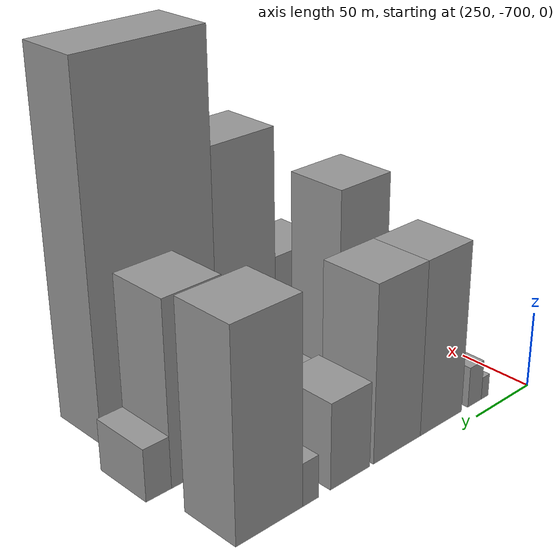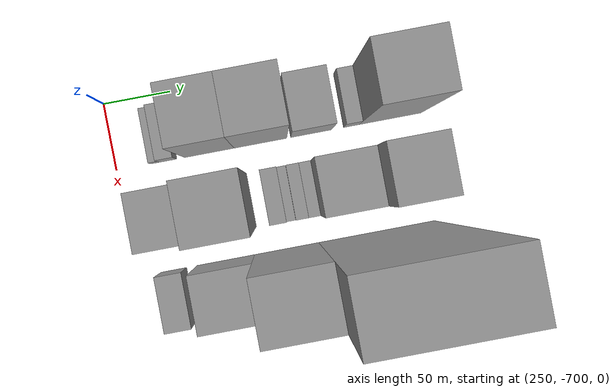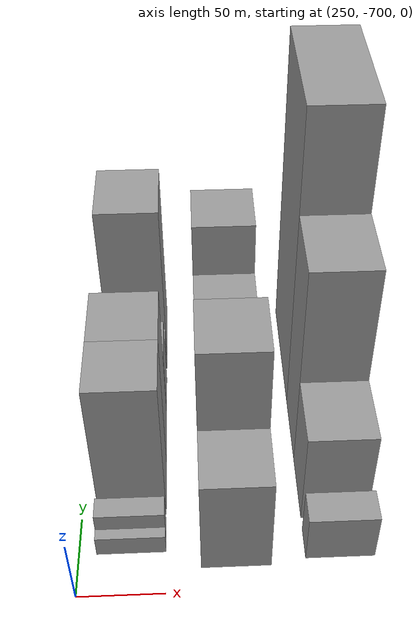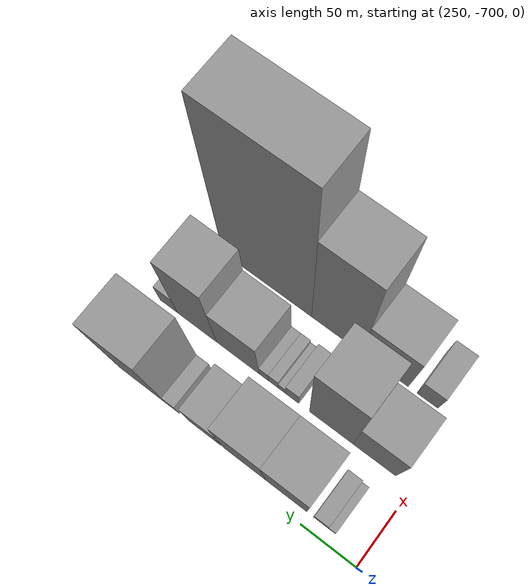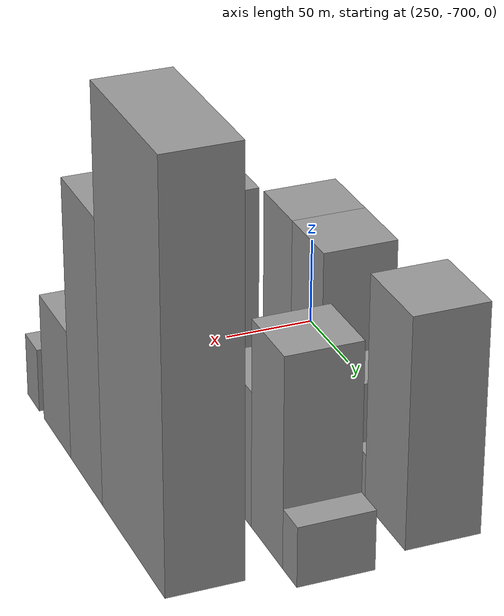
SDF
<sdf version="1.6">
 <world name="default">
  <model name="building_160">
   <static>1</static>
   <pose>280.0000 -670.3990 0 0.000000 0.000000 0.000000</pose>
   <link name="link">
    <pose>0 0 7.50 0 0 0</pose>
    <collision name="collision"><geometry><box><size>40.0000 6.6819 15.0000</size></box></geometry></collision>
    <visual name="visual">
     <cast_shadows>0</cast_shadows>
     <geometry><box><size>40.0000 6.6819 15.0000</size></box></geometry>
     <material>
      <script>
       <uri>model://grey_wall/materials/scripts</uri>
       <uri>model://grey_wall/materials/textures</uri>
       <name>vrc/grey_wall</name>
      </script>
     </material>
    </visual>
   </link>
  </model>
  <model name="building_161">
   <static>1</static>
   <pose>280.0000 -660.6986 0 0.000000 0.000000 0.000000</pose>
   <link name="link">
    <pose>0 0 13.50 0 0 0</pose>
    <collision name="collision"><geometry><box><size>40.0000 12.7189 27.0000</size></box></geometry></collision>
    <visual name="visual">
     <cast_shadows>0</cast_shadows>
     <geometry><box><size>40.0000 12.7189 27.0000</size></box></geometry>
     <material>
      <script>
       <uri>model://grey_wall/materials/scripts</uri>
       <uri>model://grey_wall/materials/textures</uri>
       <name>vrc/grey_wall</name>
      </script>
     </material>
    </visual>
   </link>
  </model>
  <model name="building_162">
   <static>1</static>
   <pose>280.0000 -629.7600 0 0.000000 0.000000 0.000000</pose>
   <link name="link">
    <pose>0 0 55.50 0 0 0</pose>
    <collision name="collision"><geometry><box><size>40.0000 37.1584 111.0000</size></box></geometry></collision>
    <visual name="visual">
     <cast_shadows>0</cast_shadows>
     <geometry><box><size>40.0000 37.1584 111.0000</size></box></geometry>
     <material>
      <script>
       <uri>model://grey_wall/materials/scripts</uri>
       <uri>model://grey_wall/materials/textures</uri>
       <name>vrc/grey_wall</name>
      </script>
     </material>
    </visual>
   </link>
  </model>
  <model name="building_163">
   <static>1</static>
   <pose>280.0000 -591.5189 0 0.000000 0.000000 0.000000</pose>
   <link name="link">
    <pose>0 0 55.50 0 0 0</pose>
    <collision name="collision"><geometry><box><size>40.0000 39.3236 111.0000</size></box></geometry></collision>
    <visual name="visual">
     <cast_shadows>0</cast_shadows>
     <geometry><box><size>40.0000 39.3236 111.0000</size></box></geometry>
     <material>
      <script>
       <uri>model://grey_wall/materials/scripts</uri>
       <uri>model://grey_wall/materials/textures</uri>
       <name>vrc/grey_wall</name>
      </script>
     </material>
    </visual>
   </link>
  </model>
  <model name="building_164">
   <static>1</static>
   <pose>280.0000 -553.4924 0 0.000000 0.000000 0.000000</pose>
   <link name="link">
    <pose>0 0 27.00 0 0 0</pose>
    <collision name="collision"><geometry><box><size>40.0000 30.7294 54.0000</size></box></geometry></collision>
    <visual name="visual">
     <cast_shadows>0</cast_shadows>
     <geometry><box><size>40.0000 30.7294 54.0000</size></box></geometry>
     <material>
      <script>
       <uri>model://grey_wall/materials/scripts</uri>
       <uri>model://grey_wall/materials/textures</uri>
       <name>vrc/grey_wall</name>
      </script>
     </material>
    </visual>
   </link>
  </model>
  <model name="building_165">
   <static>1</static>
   <pose>280.0000 -523.2725 0 0.000000 0.000000 0.000000</pose>
   <link name="link">
    <pose>0 0 13.50 0 0 0</pose>
    <collision name="collision"><geometry><box><size>40.0000 11.7104 27.0000</size></box></geometry></collision>
    <visual name="visual">
     <cast_shadows>0</cast_shadows>
     <geometry><box><size>40.0000 11.7104 27.0000</size></box></geometry>
     <material>
      <script>
       <uri>model://grey_wall/materials/scripts</uri>
       <uri>model://grey_wall/materials/textures</uri>
       <name>vrc/grey_wall</name>
      </script>
     </material>
    </visual>
   </link>
  </model>
  <model name="building_166">
   <static>1</static>
   <pose>280.0000 -494.2145 0 0.000000 0.000000 0.000000</pose>
   <link name="link">
    <pose>0 0 63.00 0 0 0</pose>
    <collision name="collision"><geometry><box><size>40.0000 46.4055 126.0000</size></box></geometry></collision>
    <visual name="visual">
     <cast_shadows>0</cast_shadows>
     <geometry><box><size>40.0000 46.4055 126.0000</size></box></geometry>
     <material>
      <script>
       <uri>model://grey_wall/materials/scripts</uri>
       <uri>model://grey_wall/materials/textures</uri>
       <name>vrc/grey_wall</name>
      </script>
     </material>
    </visual>
   </link>
  </model>
  <model name="building_217">
   <static>1</static>
   <pose>340.0000 -665.6756 0 0.000000 0.000000 0.000000</pose>
   <link name="link">
    <pose>0 0 37.50 0 0 0</pose>
    <collision name="collision"><geometry><box><size>40.0000 38.5663 75.0000</size></box></geometry></collision>
    <visual name="visual">
     <cast_shadows>0</cast_shadows>
     <geometry><box><size>40.0000 38.5663 75.0000</size></box></geometry>
     <material>
      <script>
       <uri>model://grey_wall/materials/scripts</uri>
       <uri>model://grey_wall/materials/textures</uri>
       <name>vrc/grey_wall</name>
      </script>
     </material>
    </visual>
   </link>
  </model>
  <model name="building_218">
   <static>1</static>
   <pose>340.0000 -626.1323 0 0.000000 0.000000 0.000000</pose>
   <link name="link">
    <pose>0 0 67.50 0 0 0</pose>
    <collision name="collision"><geometry><box><size>40.0000 40.5203 135.0000</size></box></geometry></collision>
    <visual name="visual">
     <cast_shadows>0</cast_shadows>
     <geometry><box><size>40.0000 40.5203 135.0000</size></box></geometry>
     <material>
      <script>
       <uri>model://grey_wall/materials/scripts</uri>
       <uri>model://grey_wall/materials/textures</uri>
       <name>vrc/grey_wall</name>
      </script>
     </material>
    </visual>
   </link>
  </model>
  <model name="building_219">
   <static>1</static>
   <pose>340.0000 -589.7433 0 0.000000 0.000000 0.000000</pose>
   <link name="link">
    <pose>0 0 13.50 0 0 0</pose>
    <collision name="collision"><geometry><box><size>40.0000 12.2577 27.0000</size></box></geometry></collision>
    <visual name="visual">
     <cast_shadows>0</cast_shadows>
     <geometry><box><size>40.0000 12.2577 27.0000</size></box></geometry>
     <material>
      <script>
       <uri>model://grey_wall/materials/scripts</uri>
       <uri>model://grey_wall/materials/textures</uri>
       <name>vrc/grey_wall</name>
      </script>
     </material>
    </visual>
   </link>
  </model>
  <model name="building_220">
   <static>1</static>
   <pose>340.0000 -580.1527 0 0.000000 0.000000 0.000000</pose>
   <link name="link">
    <pose>0 0 7.50 0 0 0</pose>
    <collision name="collision"><geometry><box><size>40.0000 6.9235 15.0000</size></box></geometry></collision>
    <visual name="visual">
     <cast_shadows>0</cast_shadows>
     <geometry><box><size>40.0000 6.9235 15.0000</size></box></geometry>
     <material>
      <script>
       <uri>model://grey_wall/materials/scripts</uri>
       <uri>model://grey_wall/materials/textures</uri>
       <name>vrc/grey_wall</name>
      </script>
     </material>
    </visual>
   </link>
  </model>
  <model name="building_221">
   <static>1</static>
   <pose>340.0000 -572.0466 0 0.000000 0.000000 0.000000</pose>
   <link name="link">
    <pose>0 0 10.50 0 0 0</pose>
    <collision name="collision"><geometry><box><size>40.0000 9.2887 21.0000</size></box></geometry></collision>
    <visual name="visual">
     <cast_shadows>0</cast_shadows>
     <geometry><box><size>40.0000 9.2887 21.0000</size></box></geometry>
     <material>
      <script>
       <uri>model://grey_wall/materials/scripts</uri>
       <uri>model://grey_wall/materials/textures</uri>
       <name>vrc/grey_wall</name>
      </script>
     </material>
    </visual>
   </link>
  </model>
  <model name="building_222">
   <static>1</static>
   <pose>340.0000 -563.0590 0 0.000000 0.000000 0.000000</pose>
   <link name="link">
    <pose>0 0 10.50 0 0 0</pose>
    <collision name="collision"><geometry><box><size>40.0000 8.6865 21.0000</size></box></geometry></collision>
    <visual name="visual">
     <cast_shadows>0</cast_shadows>
     <geometry><box><size>40.0000 8.6865 21.0000</size></box></geometry>
     <material>
      <script>
       <uri>model://grey_wall/materials/scripts</uri>
       <uri>model://grey_wall/materials/textures</uri>
       <name>vrc/grey_wall</name>
      </script>
     </material>
    </visual>
   </link>
  </model>
  <model name="building_223">
   <static>1</static>
   <pose>340.0000 -538.0868 0 0.000000 0.000000 0.000000</pose>
   <link name="link">
    <pose>0 0 37.50 0 0 0</pose>
    <collision name="collision"><geometry><box><size>40.0000 41.2580 75.0000</size></box></geometry></collision>
    <visual name="visual">
     <cast_shadows>0</cast_shadows>
     <geometry><box><size>40.0000 41.2580 75.0000</size></box></geometry>
     <material>
      <script>
       <uri>model://grey_wall/materials/scripts</uri>
       <uri>model://grey_wall/materials/textures</uri>
       <name>vrc/grey_wall</name>
      </script>
     </material>
    </visual>
   </link>
  </model>
  <model name="building_224">
   <static>1</static>
   <pose>340.0000 -497.9665 0 0.000000 0.000000 0.000000</pose>
   <link name="link">
    <pose>0 0 57.00 0 0 0</pose>
    <collision name="collision"><geometry><box><size>40.0000 38.9827 114.0000</size></box></geometry></collision>
    <visual name="visual">
     <cast_shadows>0</cast_shadows>
     <geometry><box><size>40.0000 38.9827 114.0000</size></box></geometry>
     <material>
      <script>
       <uri>model://grey_wall/materials/scripts</uri>
       <uri>model://grey_wall/materials/textures</uri>
       <name>vrc/grey_wall</name>
      </script>
     </material>
    </visual>
   </link>
  </model>
  <model name="building_225">
   <static>1</static>
   <pose>340.0000 -469.9166 0 0.000000 0.000000 0.000000</pose>
   <link name="link">
    <pose>0 0 16.50 0 0 0</pose>
    <collision name="collision"><geometry><box><size>40.0000 17.1171 33.0000</size></box></geometry></collision>
    <visual name="visual">
     <cast_shadows>0</cast_shadows>
     <geometry><box><size>40.0000 17.1171 33.0000</size></box></geometry>
     <material>
      <script>
       <uri>model://grey_wall/materials/scripts</uri>
       <uri>model://grey_wall/materials/textures</uri>
       <name>vrc/grey_wall</name>
      </script>
     </material>
    </visual>
   </link>
  </model>
  <model name="building_277">
   <static>1</static>
   <pose>400.0000 -671.7215 0 0.000000 0.000000 0.000000</pose>
   <link name="link">
    <pose>0 0 18.00 0 0 0</pose>
    <collision name="collision"><geometry><box><size>40.0000 19.1905 36.0000</size></box></geometry></collision>
    <visual name="visual">
     <cast_shadows>0</cast_shadows>
     <geometry><box><size>40.0000 19.1905 36.0000</size></box></geometry>
     <material>
      <script>
       <uri>model://grey_wall/materials/scripts</uri>
       <uri>model://grey_wall/materials/textures</uri>
       <name>vrc/grey_wall</name>
      </script>
     </material>
    </visual>
   </link>
  </model>
  <model name="building_278">
   <static>1</static>
   <pose>400.0000 -632.5990 0 0.000000 0.000000 0.000000</pose>
   <link name="link">
    <pose>0 0 36.00 0 0 0</pose>
    <collision name="collision"><geometry><box><size>40.0000 43.0545 72.0000</size></box></geometry></collision>
    <visual name="visual">
     <cast_shadows>0</cast_shadows>
     <geometry><box><size>40.0000 43.0545 72.0000</size></box></geometry>
     <material>
      <script>
       <uri>model://grey_wall/materials/scripts</uri>
       <uri>model://grey_wall/materials/textures</uri>
       <name>vrc/grey_wall</name>
      </script>
     </material>
    </visual>
   </link>
  </model>
  <model name="building_279">
   <static>1</static>
   <pose>400.0000 -587.0197 0 0.000000 0.000000 0.000000</pose>
   <link name="link">
    <pose>0 0 78.00 0 0 0</pose>
    <collision name="collision"><geometry><box><size>40.0000 48.1040 156.0000</size></box></geometry></collision>
    <visual name="visual">
     <cast_shadows>0</cast_shadows>
     <geometry><box><size>40.0000 48.1040 156.0000</size></box></geometry>
     <material>
      <script>
       <uri>model://grey_wall/materials/scripts</uri>
       <uri>model://grey_wall/materials/textures</uri>
       <name>vrc/grey_wall</name>
      </script>
     </material>
    </visual>
   </link>
  </model>
  <model name="building_280">
   <static>1</static>
   <pose>400.0000 -519.4274 0 0.000000 0.000000 0.000000</pose>
   <link name="link">
    <pose>0 0 112.50 0 0 0</pose>
    <collision name="collision"><geometry><box><size>40.0000 87.0807 225.0000</size></box></geometry></collision>
    <visual name="visual">
     <cast_shadows>0</cast_shadows>
     <geometry><box><size>40.0000 87.0807 225.0000</size></box></geometry>
     <material>
      <script>
       <uri>model://grey_wall/materials/scripts</uri>
       <uri>model://grey_wall/materials/textures</uri>
       <name>vrc/grey_wall</name>
      </script>
     </material>
    </visual>
   </link>
  </model>
 </world>
</sdf>
